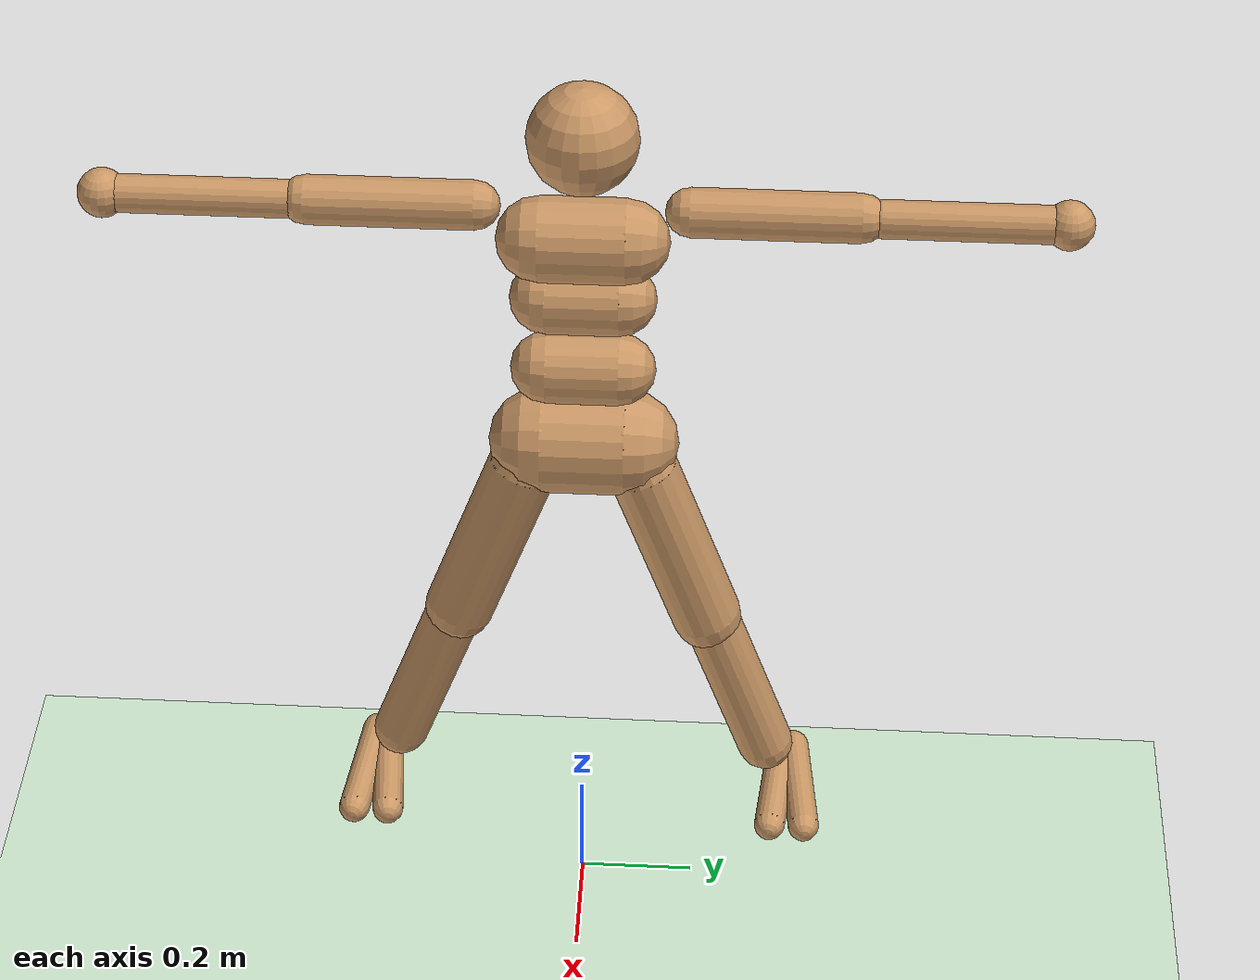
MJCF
<mujoco model='humanoid'>
  <compiler inertiafromgeom='true' angle='degree' />
  <custom>
    <numeric name="frame_skip" data="4" />
  </custom>
  <default>
    <joint limited='true' damping='1' armature='1' />
    <geom contype='1' conaffinity='1' condim='1' rgba='0.8 0.6 .4 1' margin="0.001" solref=".02 1" solimp=".8 .8 .01" material="geom" />
    <motor ctrlrange='-.4 .4' ctrllimited='true' />
  </default>
  <option timestep='0.002' integrator="RK4" iterations="50" solver="PGS">
    <flag solverstat="enable" energy="enable" />
  </option>
  <size nuser_geom='1' nkey='5' />
  <visual>
    <map fogstart="3" fogend="5" />
  </visual>
  <asset>
    <texture type="skybox" builtin="gradient" width="100" height="100" rgb1="1 1 1" rgb2="0 0 0" />
    <texture name="texgeom" type="cube" builtin="flat" mark="cross" width="127" height="1278" rgb1="0.8 0.6 0.4" rgb2="0.8 0.6 0.4" markrgb="1 1 1" random="0.01" />
    <texture name="texplane" type="2d" builtin="checker" rgb1="0 0 0" rgb2="0.8 0.8 0.8" width="100" height="100" />
    <material name='MatPlane' texture="texplane" shininess="1" texrepeat="60 60" specular="1"  reflectance="0.5" />
    <material name='geom' texture="texgeom" texuniform="true" />
  </asset>
  <worldbody>
    <light directional="true" cutoff="100" exponent="1" diffuse="1 1 1" specular=".1 .1 .1" pos="0 0 1.3" dir="-0 0 -1.3" />
    <geom name='floor' material="MatPlane" pos='0 0 0' size='40 40 40' type='plane' conaffinity='1' rgba='0.8 0.9 0.8 1' condim='3' />
    <body name='torso' pos='0 0 1.4'>
      <joint name='root' type='free' pos='0 0 0' limited='false' damping='0' armature='0' stiffness='0' />
      <geom name='torso1' type='capsule' fromto='0 -.07 0 0 .07 0' size='0.07' />
      <geom name='head' type='sphere' pos='0 0 .19' size='.09' user='258' />
      <geom name='uwaist' type='capsule' fromto='-.01 -.06 -.12 -.01 .06 -.12' size='0.06' />
      <body name='lwaist' pos='-.01 0 -0.260' quat='1.000 0 -0.002 0'>
        <geom name='lwaist' type='capsule' fromto='0 -.06 0 0 .06 0' size='0.06' />
        <joint name='abdomen_z' type='hinge' pos='0 0 0.065' axis='0 0 1' range='-10 10' damping='5' stiffness='20' armature='0.8' />
        <joint name='abdomen_y' type='hinge' pos='0 0 0.065' axis='0 1 0' range='-10 10' damping='5' stiffness='10' armature='0.8' />
        <body name='pelvis' pos='0 0 -0.165' quat='1.000 0 -0.002 0'>
          <joint name='abdomen_x' type='hinge' pos='0 0 0.1' axis='1 0 0' range='-10 10' damping='5' stiffness='10' armature='0.8' />
          <geom name='butt' type='capsule' fromto='-.02 -.07 0 -.02 .07 0' size='0.09' />
          <body name='right_thigh' pos='0 -0.1 -0.04'>

            <joint name='right_hip_z' type='hinge' pos='0 0 0' axis='1 0 0' range='-40 50' damping='5' stiffness='10' armature='0.6' />
            <joint name='right_hip_y' type='hinge' pos='0 0 0' axis='0 -0.34 -0.93' range='-30 30' damping='5' stiffness='20' armature='0.6' />
            <joint name='right_hip_x' type='hinge' pos='0 0 0' axis='0 0.93 -0.34' range='-100 20' damping='5' stiffness='10' armature='0.6' />

            <geom name='right_thigh1' type='capsule' fromto='0 0 0 0 -0.1156 -0.3162' size='0.06' />
            <body name='right_shin' pos='0 -0.125 -0.33'>
              <joint name='right_knee' type='hinge' pos='0 0 .02' axis='0 0.93 -0.34' range='2 130' armature='0.24' />
              <geom name='right_shin1' type='capsule' fromto='0 0 0 0 -0.102 -.279' size='0.049' />
              <body name='right_foot' pos='0 -0.135 -0.35'>
                <joint name='right_ankle_z' type='hinge' pos='0 0 0.08' axis='0 -0.34 -0.93' range='-20 30' stiffness='4' armature='0.32' />
                <joint name='right_ankle_x' type='hinge' pos='0 0 0.04' axis='0 0.93 -0.34' range='-22 45' stiffness='1' armature='0.24' />
                <geom name='right_foot_cap1' type='capsule' fromto='-.07 -0.02 0 0.14 -0.04 0' size='0.027' />
                <geom name='right_foot_cap2' type='capsule' fromto='-.07 0 0 0.14 0.02 0' size='0.027' />
              </body>
            </body>
          </body>
          <body name='left_thigh' pos='0 0.1 -0.04'>
            <joint name='left_hip_z' type='hinge' pos='0 0 0' axis='1 0 0' range='-40 50' damping='5' stiffness='10' armature='0.6' />
            <joint name='left_hip_y' type='hinge' pos='0 0 0' axis='0 0.34 -0.93' range='-30 30' damping='5' stiffness='10' armature='0.6' />
            <joint name='left_hip_x' type='hinge' pos='0 0 0' axis='0 0.93 0.34' range='-100 20' damping='5' stiffness='20' armature='0.6' />
            <geom name='left_thigh1' type='capsule' fromto='0 0 0 0 0.1156 -0.3162' size='0.06' />
            <body name='left_shin' pos='0 0.125 -0.33'>
              <joint name='left_knee' type='hinge' pos='0 0 .02' axis='0 0.93 0.34' range='2 130' stiffness='1' armature='0.24' />
              <geom name='left_shin1' type='capsule' fromto='0 0 0 0 0.102 -.279' size='0.049' />
              <body name='left_foot' pos='0 0.135 -0.35'>
                <joint name='left_ankle_z' type='hinge' pos='0 0 0.08' axis='0 0.34 -0.93' range='-20 30' stiffness='4' armature='0.32' />
                <joint name='left_ankle_x' type='hinge' pos='0 0 0.04' axis='0 0.93 0.34' range='-22 45' stiffness='1' armature='0.24' />
                <geom name='left_foot_cap1' type='capsule' fromto='-.07 0.02 0 0.14 0.04 0' size='0.027' />
                <geom name='left_foot_cap2' type='capsule' fromto='-.07 0 0 0.14 -0.02 0' size='0.027' />
              </body>
            </body>
          </body>
        </body>
      </body>
      <body name='right_upper_arm' pos='0 -0.17 0.06'>
        <joint name='right_shoulder_z' type='hinge' pos='0 0 0' axis='-0.8 0 -0.5' range='-90 60' stiffness='1' armature='0.6' />
        <joint name='right_shoulder_y' type='hinge' pos='0 0 0' axis='0 1 0' range='-60 60' stiffness='1' armature='0.6' />
        <joint name='right_shoulder_x' type='hinge' pos='0 0 0' axis='-0.5 0 0.8' range='-70 40' stiffness='1' armature='0.8' />

        <geom name='right_uarm1' type='capsule' fromto='0 0 0 0 -.27 0' size='0.04 0.16' />
        <body name='right_lower_arm' pos='0 -.29 0'>
          <joint name='right_elbow' type='hinge' pos='0 0 0' axis='-0.5 0 0.86' range='0 90' stiffness='0' armature='0.12' />
          <geom name='right_larm' type='capsule' fromto='0 0.01 0 0 -0.294 0' size='0.031' />
          <geom name='right_hand' type='sphere' pos='0 -0.304 0' size='0.04' />
          <camera pos="0 0 0" />
        </body>
      </body>
      <body name='left_upper_arm' pos='0 0.17 0.06'>
        <joint name='left_shoulder_z' type='hinge' pos='0 0 0' axis='-0.8  0 -0.5' range='-60 90' stiffness='1' armature='0.6' />
        <joint name='left_shoulder_y' type='hinge' pos='0 0 0' axis='0 -1 0 ' range='-60 60' stiffness='1' armature='0.6' />
        <joint name='left_shoulder_x' type='hinge' pos='0 0 0' axis='0.5 0 -0.8' range='-70 40' stiffness='1' armature='0.8' />
        <geom name='left_uarm1' type='capsule' fromto='0 0 0 0 .27 0' size='0.04 0.16' />
        <body name='left_lower_arm' pos='0 .29 0'>
          <joint name='left_elbow' type='hinge' pos='0 0 0' axis='0.5 0 -0.86' range='0 90' stiffness='0' armature='0.12' />
          <geom name='left_larm' type='capsule' fromto='0 0.01 0 0 0.294 0' size='0.031' />
          <geom name='left_hand' type='sphere' pos='0 0.304 0' size='0.04' />
          <camera pos="0 0 0" />
        </body>

      </body>
    </body>
  </worldbody>
  <tendon>
    <fixed name='left_hipknee'>
      <joint joint='left_hip_y' coef='-1' />
      <joint joint='left_knee' coef='1' />
    </fixed>
    <fixed name='right_hipknee'>
      <joint joint='right_hip_y' coef='-1' />
      <joint joint='right_knee' coef='1' />
    </fixed>
  </tendon>
  <actuator>
    <motor name='abdomen_y' gear='200' joint='abdomen_y' />
    <motor name='abdomen_z' gear='200' joint='abdomen_z' />
    <motor name='abdomen_x' gear='200' joint='abdomen_x' />
    <motor name='right_hip_z' gear='200' joint='right_hip_z' />
    <motor name='right_hip_y' gear='600' joint='right_hip_y' />
    <motor name='right_hip_x' gear='200' joint='right_hip_x' />
    <motor name='right_knee' gear='400' joint='right_knee' />
    <motor name='right_ankle_z' gear='100' joint='right_ankle_z' />
    <motor name='right_ankle_x' gear='100' joint='right_ankle_x' />
    <motor name='left_hip_z' gear='200' joint='left_hip_z' />
    <motor name='left_hip_y' gear='600' joint='left_hip_y' />
    <motor name='left_hip_x' gear='200' joint='left_hip_x' />
    <motor name='left_knee' gear='400' joint='left_knee' />
    <motor name='left_ankle_z' gear='100' joint='left_ankle_z' />
    <motor name='left_ankle_x' gear='100' joint='left_ankle_x' />
    <motor name='right_shoulder_z' gear='100' joint='right_shoulder_z' />
    <motor name='right_shoulder_y' gear='100' joint='right_shoulder_y' />
    <motor name='right_shoulder_x' gear='100' joint='right_shoulder_x' />
    <motor name='right_elbow' gear='200' joint='right_elbow' />
    <motor name='left_shoulder_z' gear='100' joint='left_shoulder_z' />
    <motor name='left_shoulder_y' gear='100' joint='left_shoulder_y' />
    <motor name='left_shoulder_x' gear='100' joint='left_shoulder_x' />
    <motor name='left_elbow' gear='200' joint='left_elbow' />
  </actuator>
</mujoco>
